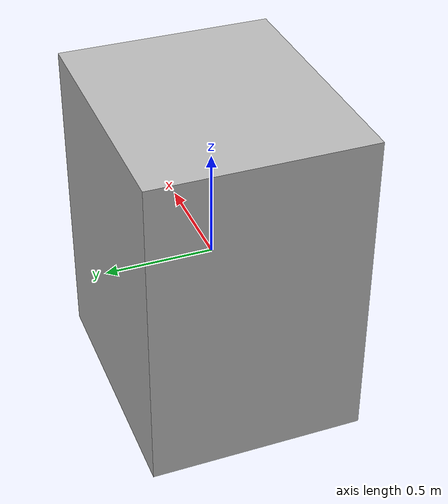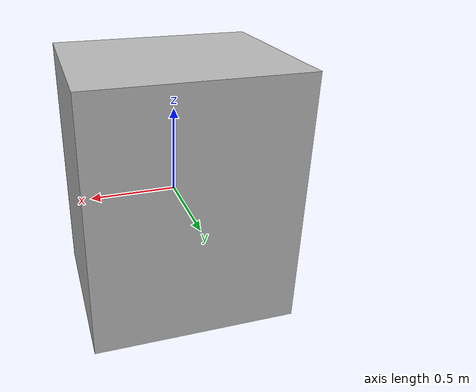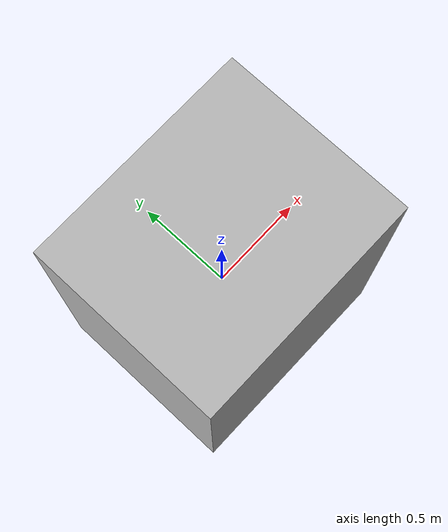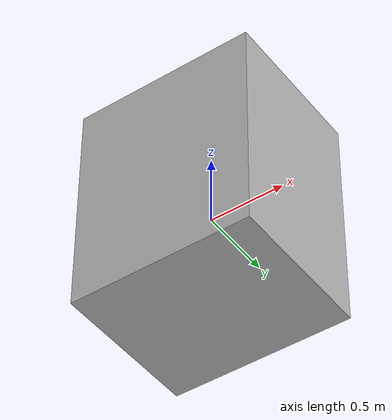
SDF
<?xml version="1.0" ?>
<sdf version="1.5">
  <model name="Big box">
    <pose>0 0 0.05 0 0 0</pose>
    <static>false</static>
    <link name="link">
      <inertial>
        <mass>0.026</mass>
        <inertia>
          <ixx>1.664e-5</ixx>
          <iyy>1.664e-5</iyy>
          <izz>1.664e-5</izz>
          <ixy>0</ixy>
          <ixz>0</ixz>
          <iyz>0</iyz>
        </inertia>
      </inertial>

      <collision name="collision">
        <geometry>
          <mesh>
            <uri>model://big_box/meshes/big_box.dae</uri>
          </mesh>
        </geometry>
      </collision>
      <visual name="visual">
        <geometry>
          <mesh>
            <uri>model://big_box/meshes/big_box.dae</uri>
          </mesh>
        </geometry>
      </visual>
    </link>
  </model>
</sdf>
